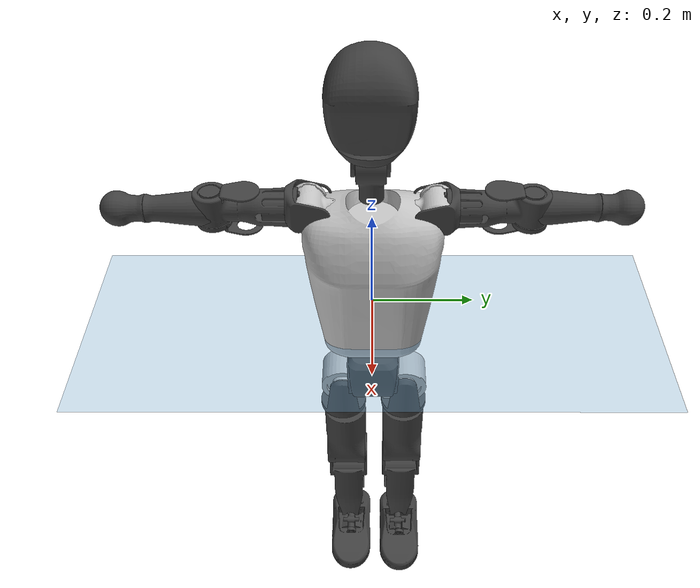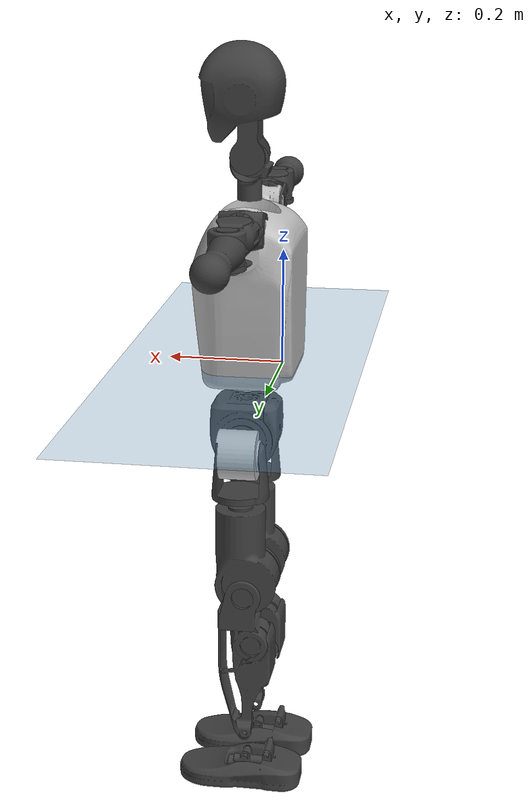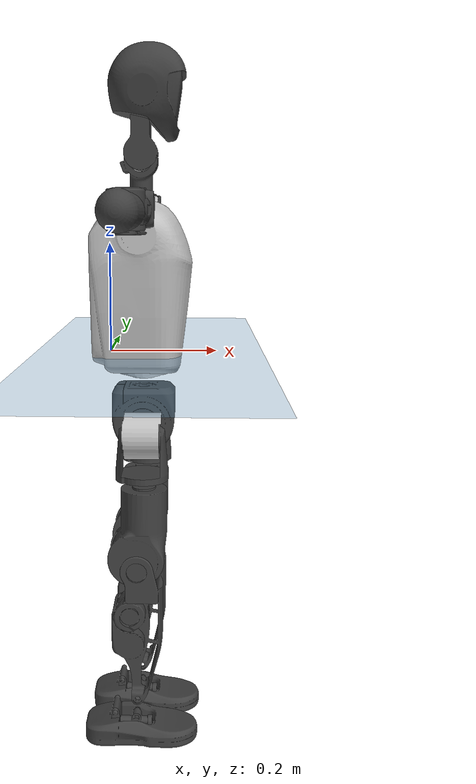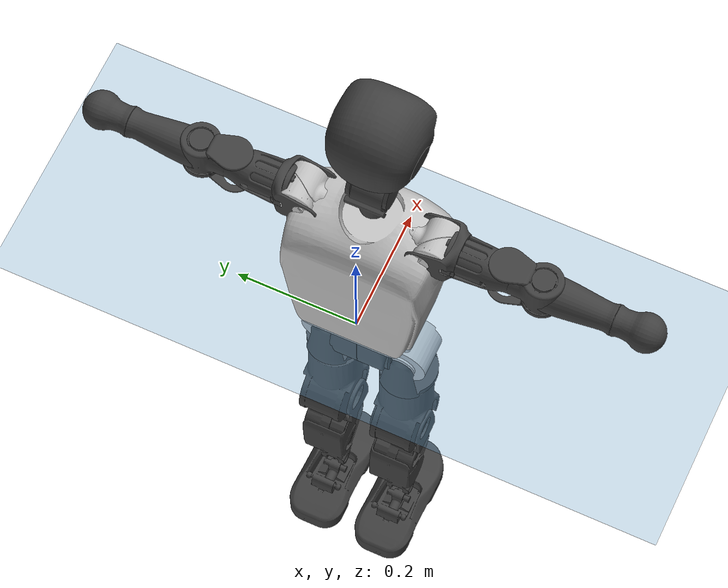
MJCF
<mujoco model="T1">
  <compiler angle="radian" assetdir="assets" balanceinertia="true" inertiafromgeom="false"/>

  <option timestep="0.005" density="1.2" viscosity="2e-05"/>

  <size nkey="1"/>

  <visual>
    <quality shadowsize="8192"/>
    <map shadowclip="0.5"/>
  </visual>

  <default>
    <default class="/">
      <joint armature="0.01" damping="0.01" frictionloss="0.1"/>
      <geom contype="0" conaffinity="0" group="1" solref="-1000 -80"/>
      <site size="0.01 0.005 0.005" group="5"/>
      <general forcelimited="true" biastype="affine" gainprm="25" biasprm="0 -25 -0.6"/>
      <default class="t1">
        <geom rgba="0.25 0.25 0.25 1"/>
        <default class="visual">
          <geom type="mesh" group="2"/>
        </default>
        <default class="collision">
          <geom group="3"/>
        </default>
        <default class="foot">
          <geom size="0.1115 0.05 0.015" type="box" condim="6" group="4" priority="1" solimp="0.015 1 0.015"/>
        </default>
        <default class="reward_collision_sphere">
          <geom group="5" rgba="1 0 0 1"/>
        </default>
      </default>
    </default>
  </default>

  <asset>
    <texture type="skybox" colorspace="auto" name="//unnamed_texture_0" builtin="gradient" rgb1="0.95 0.95 0.95" rgb2="0.95 0.95 0.95" width="100" height="600"/>
    <texture type="2d" colorspace="auto" name="texplane" builtin="checker" rgb1="0.345 0.575 0.748" rgb2="0.345 0.575 0.748" markrgb="1 1 1" width="512" height="512"/>
    <material name="MatPlane" class="/" texture="texplane" texuniform="true" texrepeat="2 2" specular="0.9"/>
    <mesh name="Trunk" class="/" file="Trunk.stl"/>
    <mesh name="H1" class="/" file="H1.stl"/>
    <mesh name="H2" class="/" file="H2.stl"/>
    <mesh name="AL1" class="/" file="AL1.stl"/>
    <mesh name="AL2" class="/" file="AL2.stl"/>
    <mesh name="AL3" class="/" file="AL3.stl"/>
    <mesh name="left_hand_link" class="/" file="left_hand_link.stl"/>
    <mesh name="AR1" class="/" file="AR1.stl"/>
    <mesh name="AR2" class="/" file="AR2.stl"/>
    <mesh name="AR3" class="/" file="AR3.stl"/>
    <mesh name="right_hand_link" class="/" file="right_hand_link.stl"/>
    <mesh name="Waist" class="/" file="Waist.stl"/>
    <mesh name="Hip_Pitch_Left" class="/" file="Hip_Pitch_Left.stl"/>
    <mesh name="Hip_Roll_Left" class="/" file="Hip_Roll_Left.stl"/>
    <mesh name="Hip_Yaw_Left" class="/" file="Hip_Yaw_Left.stl"/>
    <mesh name="Shank_Left" class="/" file="Shank_Left.stl"/>
    <mesh name="Ankle_Cross_Left" class="/" file="Ankle_Cross_Left.stl"/>
    <mesh name="left_foot_link" class="/" file="left_foot_link.stl"/>
    <mesh name="Hip_Pitch_Right" class="/" file="Hip_Pitch_Right.stl"/>
    <mesh name="Hip_Roll_Right" class="/" file="Hip_Roll_Right.stl"/>
    <mesh name="Hip_Yaw_Right" class="/" file="Hip_Yaw_Right.stl"/>
    <mesh name="Shank_Right" class="/" file="Shank_Right.stl"/>
    <mesh name="Ankle_Cross_Right" class="/" file="Ankle_Cross_Right.stl"/>
    <mesh name="right_foot_link" class="/" file="right_foot_link.stl"/>
  </asset>

  <worldbody>
    <geom name="floor" class="/" size="100 100 0.125" type="plane" group="0" material="MatPlane"/>
    <light name="toplight_shadow" class="/" pos="0 0 5" dir="0.0990148 0.0990148 -0.990148" type="directional" ambient="0.04 0.04 0.04" diffuse="0.55 0.55 0.55" specular="0.12 0.12 0.12"/>
    <light name="toplight_fill" class="/" pos="0 0 5" dir="0.0990148 0.0990148 -0.990148" type="directional" castshadow="false" ambient="0.04 0.04 0.04" diffuse="0.3 0.3 0.3" specular="0.08 0.08 0.08"/>
    <body name="trunk" childclass="t1" pos="-7.35631e-05 0.00176641 0.00108589" quat="1 1.39535e-05 2.89028e-05 1.88651e-05">
      <inertial pos="0.0509538 -0.00238622 0.123912" quat="0.999959 0.00180902 -0.00277726 0.0084155" mass="8.76546" diaginertia="0.071603 0.00603646 0.119742"/>
      <joint name="//unnamed_joint_0" type="free" armature="0" damping="0" frictionloss="0"/>
      <geom name="//unnamed_geom_1" class="visual" rgba="0.76 0.76 0.76 1" mesh="Trunk"/>
      <geom name="//unnamed_geom_2" class="collision" size="0.0685289 0.0913718 0.137058" pos="0.0572271 0 0.141344" type="box"/>
      <geom name="//unnamed_geom_3" class="reward_collision_sphere" size="0.105078" pos="0.0572271 0 0.117786"/>
      <geom name="//unnamed_geom_4" class="reward_collision_sphere" size="0.0137058" pos="0.0572271 0.0518079 0"/>
      <geom name="//unnamed_geom_5" class="reward_collision_sphere" size="0.0137058" pos="0.0572271 -0.0518079 0"/>
      <geom name="//unnamed_geom_6" class="reward_collision_sphere" size="0.0137058" pos="0.0572271 0.065217 0.212016"/>
      <geom name="//unnamed_geom_7" class="reward_collision_sphere" size="0.0137058" pos="0.0572271 -0.065217 0.212016"/>
      <site name="imu" pos="0.000830775 -6.62141e-05 -0.0136464" size="0.00913718"/>
      <camera name="track" pos="0 -1.21901 0" quat="0.707107 0.707107 0 0" mode="trackcom"/>
      <camera name="ego_camera" pos="0.116362 0 0.494703" quat="-0.5 -0.5 0.5 0.5"/>
      <body name="H1" pos="0.0592491 -0.00271606 0.283641" quat="1 -7.70299e-05 8.88612e-06 -3.69685e-05">
        <inertial pos="0.000503809 -0.00293829 0.0702875" quat="0.764928 -0.0231671 -0.00685083 0.643662" mass="0.329933" diaginertia="0.000179196 1.88202e-05 0.000318924"/>
        <joint name="AAHead_yaw" pos="0 0 0" axis="0.0126804 0.00587858 0.999902" stiffness="0.00202971" range="-1.51518 1.54197" armature="0.00934965" damping="0" frictionloss="0.0823192"/>
        <geom name="//unnamed_geom_8" class="visual" mesh="H1"/>
        <body name="H2" pos="-0.000578853 -0.000667488 0.0754964" quat="0.999999 -0.000152209 -0.000640243 -0.000936295">
          <inertial pos="0.00420856 0.0021517 0.117245" quat="0.98735 0.108286 -0.0754206 -0.0878992" mass="0.482264" diaginertia="0.00160068 0.000156931 0.00402066"/>
          <joint name="Head_pitch" pos="0 0 0" axis="0.00518265 -0.999983 0.00262573" range="-1.17944 0.328868" armature="0.00865546" damping="0.0145338" frictionloss="0.0872475"/>
          <geom name="//unnamed_geom_9" class="visual" mesh="H2"/>
          <geom name="//unnamed_geom_10" class="collision" size="0.0730974" pos="0.00953785 0 0.129565"/>
          <geom name="//unnamed_geom_11" class="reward_collision_sphere" size="0.0822346" pos="0.0190757 0 0.117786"/>
        </body>
      </body>
      <body name="AL1" pos="0.0538585 0.0628053 0.256391" quat="1 -2.94441e-05 0.000656504 -0.000205785">
        <inertial pos="0.00177272 0.025058 3.27069e-05" quat="0.502966 0.497075 -0.505142 0.494746" mass="0.397515" diaginertia="0.00102704 0.000106497 0.000657275"/>
        <joint name="Left_Shoulder_Pitch" pos="0 0 0" axis="0.0106492 0.999923 0.00633821" range="-3.32752 1.21378" armature="0.00831534" damping="0" frictionloss="0.0791792"/>
        <geom name="//unnamed_geom_12" class="visual" rgba="0.76 0.76 0.76 1" mesh="AL1"/>
        <body name="AL2" pos="-0.00104164 0.0268906 0.00108213" quat="1 -2.15599e-06 3.6837e-05 -0.000242871">
          <inertial pos="0.00186302 0.0255205 -0.000331655" quat="0.4841 0.521973 -0.485085 0.507822" mass="0.123706" diaginertia="0.000321373 2.90986e-05 0.000409816"/>
          <joint name="Left_Shoulder_Roll" pos="0 0 0" axis="-0.999997 -0.00237665 -0.000571564" range="-1.57866 1.70014" armature="0.00994564" damping="0.0125775" frictionloss="0.0875486"/>
          <geom name="//unnamed_geom_13" class="visual" mesh="AL2"/>
          <body name="AL3" pos="-0.00159594 0.0341432 -0.00168021" quat="1 -3.85499e-05 -3.55048e-05 2.18881e-05">
            <inertial pos="-0.00101604 0.0537304 0.00227074" quat="0.708185 0.705955 -0.00952243 -0.00337853" mass="0.756256" diaginertia="0.00959073 0.00101821 0.00136697"/>
            <joint name="Left_Elbow_Pitch" pos="0 0 0" axis="-0.0132546 -0.99991 -0.00202847" stiffness="0.0110194" range="-2.26435 2.23742" armature="0.00932694" damping="0.0103314" frictionloss="0.0839963"/>
            <geom name="//unnamed_geom_14" class="visual" mesh="AL3"/>
            <geom name="//unnamed_geom_15" class="collision" size="0.0274115 0.0685289" pos="0 0.0304753 0" quat="0.707105 0.707108 0 0" type="cylinder"/>
            <geom name="//unnamed_geom_16" class="reward_collision_sphere" size="0.0328939"/>
            <body name="left_hand_link" pos="-0.00190528 0.0923492 0.000672521" quat="1 0.000223804 -0.000517599 0.000420905">
              <inertial pos="-0.00176608 0.0681365 -5.07603e-05" quat="0.712493 0.701623 -0.00562162 0.00686479" mass="0.241331" diaginertia="0.00633949 0.0006907 0.000485679"/>
              <joint name="Left_Elbow_Yaw" pos="0 0 0" axis="-0.00157982 0.000926851 0.999998" stiffness="0.0127794" range="-2.4919 -0.0303614" armature="0.00886881" damping="0.00874059" frictionloss="0.102661"/>
              <geom name="//unnamed_geom_17" class="visual" mesh="left_hand_link"/>
              <geom name="//unnamed_geom_18" class="collision" size="0.0274115 0.0799503" pos="0 0.0792357 0" quat="0.707105 0.707108 0 0" type="cylinder"/>
              <geom name="//unnamed_geom_19" class="reward_collision_sphere" size="0.0456859"/>
              <geom name="//unnamed_geom_20" class="reward_collision_sphere" size="0.0319801" pos="0 0.0670456 0"/>
              <geom name="//unnamed_geom_21" class="reward_collision_sphere" size="0.0319801" pos="0 0.131044 0"/>
            </body>
          </body>
        </body>
      </body>
      <body name="AR1" pos="0.0522133 -0.0637988 0.258254" quat="1 -5.37942e-05 0.000507383 4.87741e-05">
        <inertial pos="-0.00114064 -0.0276319 -0.00108068" quat="0.508035 0.503395 -0.495442 0.492981" mass="0.417077" diaginertia="0.00109295 0.000105571 0.00067172"/>
        <joint name="Right_Shoulder_Pitch" pos="0 0 0" axis="0.00346462 -0.999958 -0.00852439" range="-1.22614 3.2941" armature="0.00833489" damping="0.0192559" frictionloss="0.0964843"/>
        <geom name="//unnamed_geom_22" class="visual" rgba="0.76 0.76 0.76 1" mesh="AR1"/>
        <body name="AR2" pos="-0.00204919 -0.0283387 0.00201788" quat="1 3.85257e-05 7.27759e-05 0.000106658">
          <inertial pos="0.00486465 -0.0233754 0.00155513" quat="0.517643 0.492917 -0.51138 0.477042" mass="0.119568" diaginertia="0.000315638 2.78779e-05 0.000398104"/>
          <joint name="Right_Shoulder_Roll" pos="0 0 0" axis="-0.999998 0.000882438 0.00194368" range="-1.7584 1.59626" armature="0.0084429" damping="0.00111444" frictionloss="0.0942152"/>
          <geom name="//unnamed_geom_23" class="visual" mesh="AR2"/>
          <body name="AR3" pos="-0.000178652 -0.0351273 -0.00282325" quat="0.999999 -5.01011e-06 -0.00119011 -1.56809e-05">
            <inertial pos="0.000151972 -0.0511258 -0.000712268" quat="0.709015 0.705068 0.0119865 -0.00574966" mass="0.760905" diaginertia="0.00979969 0.00103839 0.00136777"/>
            <joint name="Right_Elbow_Pitch" pos="0 0 0" axis="0.000214906 1 0.000520272" stiffness="0.0153599" range="-2.28959 2.26426" armature="0.009122" damping="0" frictionloss="0.0920013"/>
            <geom name="//unnamed_geom_24" class="visual" mesh="AR3"/>
            <geom name="//unnamed_geom_25" class="collision" size="0.0274115 0.0685289" pos="0 -0.0304753 0" quat="0.707105 0.707108 0 0" type="cylinder"/>
            <geom name="//unnamed_geom_26" class="reward_collision_sphere" size="0.0328939"/>
            <body name="right_hand_link" pos="0.000761215 -0.0913395 -0.00200077" quat="1 3.43986e-05 6.61749e-05 -0.000223708">
              <inertial pos="-0.00174982 -0.0676689 0.00219252" quat="0.704171 0.709973 0.00227974 0.0087754" mass="0.248641" diaginertia="0.00636187 0.000656617 0.000469966"/>
              <joint name="Right_Elbow_Yaw" pos="0 0 0" axis="0.00607949 0.00527947 0.999968" range="0.0542189 2.44045" armature="0.00852871" damping="0.00213994" frictionloss="0.0900333"/>
              <geom name="//unnamed_geom_27" class="visual" mesh="right_hand_link"/>
              <geom name="//unnamed_geom_28" class="collision" size="0.0274115 0.0799503" pos="0 -0.0792357 0" quat="0.707105 0.707108 0 0" type="cylinder"/>
              <geom name="//unnamed_geom_29" class="reward_collision_sphere" size="0.0456859"/>
              <geom name="//unnamed_geom_30" class="reward_collision_sphere" size="0.0319801" pos="0 -0.0670456 0"/>
              <geom name="//unnamed_geom_31" class="reward_collision_sphere" size="0.0319801" pos="0 -0.131044 0"/>
            </body>
          </body>
        </body>
      </body>
      <body name="Waist" pos="0.0625165 0.000202059 -0.133694" quat="1 0.000113017 0.0002493 -0.000674875">
        <inertial pos="0.00314753 -0.00140147 0.0102295" quat="0.983649 0.000358101 -0.180078 0.00268376" mass="2.05472" diaginertia="0.00431365 0.000459706 0.0106883"/>
        <joint name="Waist" pos="0 0 0" axis="-0.00889771 0.00549039 0.999945" range="-1.54936 1.58328" armature="0.0104079" damping="0" frictionloss="0.095773"/>
        <geom name="//unnamed_geom_32" class="visual" mesh="Waist"/>
        <body name="Hip_Pitch_Left" pos="0.00398693 0.0654532 0.000409039" quat="1 2.57561e-05 -0.000332624 -0.000273551">
          <inertial pos="0.000337426 -0.00755085 -0.0218055" quat="0.975064 0.220663 0.0220619 -0.00840765" mass="0.778792" diaginertia="0.001344 0.00011642 0.0026594"/>
          <joint name="Left_Hip_Pitch" pos="0 0 0" axis="-0.0136046 0.999861 0.00962709" stiffness="0.00812719" range="-1.82867 1.62321" armature="0.00795629" damping="0.0115896" frictionloss="0.10392"/>
          <geom name="//unnamed_geom_33" class="visual" rgba="0.76 0.76 0.76 1" mesh="Hip_Pitch_Left"/>
          <body name="Hip_Roll_Left" pos="-0.000390633 -0.000235535 -0.0217561" quat="0.999999 0.000112603 0.00111967 -5.82428e-05">
            <inertial pos="0.00159997 -0.000840966 -0.0608871" quat="0.703566 0.00146763 -0.0032319 0.710621" mass="0.299109" diaginertia="0.00140077 0.000132701 0.00115368"/>
            <joint name="Left_Hip_Roll" pos="0 0 0" axis="-0.999937 -0.00548575 0.00984198" range="-1.59351 0.189572" armature="0.00898961" damping="0.0194495" frictionloss="0.0908933"/>
            <geom name="//unnamed_geom_34" class="visual" mesh="Hip_Roll_Left"/>
            <geom name="//unnamed_geom_35" class="reward_collision_sphere" size="0.0502545"/>
            <body name="Hip_Yaw_Left" pos="-0.00270425 0.000377771 -0.0966336" quat="1 3.60304e-05 -7.47954e-05 -0.000380804">
              <inertial pos="-0.00478607 -0.00231169 -0.107618" quat="0.70168 -0.035005 -0.0285199 0.71106" mass="1.61228" diaginertia="0.0193378 0.0020723 0.00578403"/>
              <joint name="Left_Hip_Yaw" pos="0 0 0" axis="0.00896066 0.00767393 -0.99993" range="-0.963609 1.02696" armature="0.00959347" damping="0" frictionloss="0.103195"/>
              <geom name="//unnamed_geom_36" class="visual" mesh="Hip_Yaw_Left"/>
              <geom name="//unnamed_geom_37" class="collision" size="0.0456859 0.0730974" type="cylinder"/>
              <body name="Shank_Left" pos="-0.00955685 -0.00074834 -0.156874" quat="1 5.43607e-05 5.18369e-05 4.95243e-05">
                <inertial pos="-0.00522761 4.92182e-05 -0.146312" quat="0.997357 -0.00779915 -0.0256914 0.0675073" mass="1.31169" diaginertia="0.0272124 0.00291933 0.00443285"/>
                <joint name="Left_Knee_Pitch" pos="0 0 0" axis="-0.000270277 1 0.000220886" stiffness="0.0081311" range="0.0451646 2.39449" armature="0.00855958" damping="0.0172483" frictionloss="0.0944072"/>
                <geom name="//unnamed_geom_38" class="visual" mesh="Shank_Left"/>
                <geom name="//unnamed_geom_39" class="collision" size="0.0456859 0.0685289" pos="0 0 -0.141344" type="cylinder"/>
                <geom name="//unnamed_geom_40" class="reward_collision_sphere" size="0.0593917"/>
                <body name="Ankle_Cross_Left" pos="-0.000384231 0.00029811 -0.331224" quat="0.999999 0.00101726 -0.000223586 0.000750193">
                  <inertial pos="-0.00211868 0.00250018 -0.011866" quat="0.444388 0.554145 0.547951 0.441805" mass="0.0535611" diaginertia="2.28417e-05 2.01484e-06 2.48027e-05"/>
                  <joint name="Left_Ankle_Pitch" pos="0 0 0" axis="0.000527479 0.999887 0.0149958" stiffness="0.00667018" range="-0.923663 0.403016" armature="0.00903235" damping="0.0206179" frictionloss="0.0847773"/>
                  <geom name="//unnamed_geom_41" class="visual" mesh="Ankle_Cross_Left"/>
                  <body name="left_foot_link" pos="-0.000274038 0.00319319 -0.0164547" quat="1 -0.000706345 0.000387351 0.000295265">
                    <inertial pos="0.00240978 0.000769508 -0.0098237" quat="-0.00610334 0.620684 0.0074872 0.784001" mass="0.543544" diaginertia="0.00213134 0.000213073 0.00528212"/>
                    <joint name="Left_Ankle_Roll" pos="0 0 0" axis="-0.999937 0.01118 -0.00127124" stiffness="0.00978915" range="-0.496114 0.420866" armature="0.00836515" damping="0.0101668" frictionloss="0.103713"/>
                    <geom name="//unnamed_geom_42" class="visual" mesh="left_foot_link"/>
                    <geom name="left_foot" class="foot" size="0.0971735 0.051809 0.0126781" pos="0.00953785 0 -0.017668"/>
                    <geom name="//unnamed_geom_44" class="reward_collision_sphere" size="0.0475133" pos="0.00953785 0 -0.017668"/>
                    <geom name="//unnamed_geom_45" class="reward_collision_sphere" size="0.0274115" pos="0.0906095 -0.0140186 -0.017668"/>
                    <geom name="//unnamed_geom_46" class="reward_collision_sphere" size="0.0274115" pos="-0.0667649 -0.0140186 -0.017668"/>
                    <site name="left_foot" class="foot" pos="0.00953785 0 -0.017668" size="0.00913718"/>
                  </body>
                </body>
              </body>
            </body>
          </body>
        </body>
        <body name="Hip_Pitch_Right" pos="0.000378035 -0.0614078 -0.000559982" quat="1 -0.000290929 0.000101994 0.000673028">
          <inertial pos="0.0005999 0.00600306 -0.0214682" quat="0.975033 -0.220917 0.0224957 -3.5967e-05" mass="0.727763" diaginertia="0.00139313 0.000119023 0.00273717"/>
          <joint name="Right_Hip_Pitch" pos="0 0 0" axis="0.0154364 -0.999874 -0.00366031" range="-1.52792 1.75253" armature="0.00790376" damping="0.0164222" frictionloss="0.0796762"/>
          <geom name="//unnamed_geom_47" class="visual" rgba="0.76 0.76 0.76 1" mesh="Hip_Pitch_Right"/>
          <body name="Hip_Roll_Right" pos="0.000816077 -0.00173534 -0.0262874" quat="1 -0.000514148 0.000311142 0.000340515">
            <inertial pos="0.000739464 0.000893919 -0.0644851" quat="0.707866 -0.00666938 -0.00504466 0.706297" mass="0.30903" diaginertia="0.00143607 0.000130319 0.00120138"/>
            <joint name="Right_Hip_Roll" pos="0 0 0" axis="-0.999869 -0.0111045 -0.0117993" range="-0.205443 1.56442" armature="0.00945024" damping="0.0198451" frictionloss="0.0868492"/>
            <geom name="//unnamed_geom_48" class="visual" mesh="Hip_Roll_Right"/>
            <geom name="//unnamed_geom_49" class="reward_collision_sphere" size="0.0502545"/>
            <body name="Hip_Yaw_Right" pos="0.0009533 0.00298974 -0.0962982" quat="1 0.000325995 0.000174643 -0.000404288">
              <inertial pos="-0.00644851 0.00199549 -0.102485" quat="0.713312 -0.037974 -0.0217624 0.699479" mass="1.75409" diaginertia="0.0210667 0.00220257 0.00587316"/>
              <joint name="Right_Hip_Yaw" pos="0 0 0" axis="0.0110952 -0.00593125 -0.999921" range="-1.05154 1.01377" armature="0.00827571" damping="0.0222344" frictionloss="0.090523"/>
              <geom name="//unnamed_geom_50" class="visual" mesh="Hip_Yaw_Right"/>
              <geom name="//unnamed_geom_51" class="collision" size="0.0456859 0.0730974" type="cylinder"/>
              <body name="Shank_Right" pos="-0.0126956 0.00290387 -0.157456" quat="1 0.00014593 0.000147759 -8.00999e-06">
                <inertial pos="-0.00472925 -0.000622511 -0.147273" quat="0.999089 -0.00370834 -0.032275 -0.0276765" mass="1.36953" diaginertia="0.0284379 0.0028148 0.00442475"/>
                <joint name="Right_Knee_Pitch" pos="0 0 0" axis="-0.0116009 -0.999927 0.00327874" stiffness="0.00321971" range="-2.29011 0.049801" armature="0.00900343" damping="0.0188315" frictionloss="0.0874108"/>
                <geom name="//unnamed_geom_52" class="visual" mesh="Shank_Right"/>
                <geom name="//unnamed_geom_53" class="collision" size="0.0456859 0.0685289" pos="0 0 -0.141344" type="cylinder"/>
                <geom name="//unnamed_geom_54" class="reward_collision_sphere" size="0.0593917"/>
                <body name="Ankle_Cross_Right" pos="-0.00282994 0.000651644 -0.328017" quat="1 0.000274322 -3.77107e-07 -0.000176106">
                  <inertial pos="-0.00588471 -0.00103393 -0.00849302" quat="0.447419 0.551243 0.550635 0.439032" mass="0.0564279" diaginertia="2.35303e-05 2.18645e-06 2.61774e-05"/>
                  <joint name="Right_Ankle_Pitch" pos="0 0 0" axis="0.000365647 -0.999999 0.00136348" range="-0.319015 0.922668" armature="0.00916888" damping="0.00054372" frictionloss="0.0879358"/>
                  <geom name="//unnamed_geom_55" class="visual" mesh="Ankle_Cross_Right"/>
                  <body name="right_foot_link" pos="-0.000122261 -0.000458958 -0.0122293" quat="0.999999 0.00022724 -0.00126366 -0.000368821">
                    <inertial pos="0.00214302 -0.00153206 -0.0105612" quat="-0.00594691 0.617795 0.00232454 0.786314" mass="0.524121" diaginertia="0.00206384 0.000195028 0.00472114"/>
                    <joint name="Right_Ankle_Roll" pos="0 0 0" axis="-1 -0.000419755 -7.62278e-05" stiffness="0.00509522" range="-0.477909 0.439046" armature="0.0103273" damping="0" frictionloss="0.0875234"/>
                    <geom name="//unnamed_geom_56" class="visual" mesh="right_foot_link"/>
                    <geom name="right_foot" class="foot" size="0.100627 0.046598 0.0143492" pos="0.00953785 0 -0.017668"/>
                    <geom name="//unnamed_geom_58" class="reward_collision_sphere" size="0.0365487"/>
                    <geom name="//unnamed_geom_59" class="reward_collision_sphere" size="0.0274115" pos="0.00953785 0 -0.017668"/>
                    <geom name="//unnamed_geom_60" class="reward_collision_sphere" size="0.0274115" pos="0.0906095 0.0140186 -0.017668"/>
                    <geom name="//unnamed_geom_61" class="reward_collision_sphere" size="0.0274115" pos="-0.0667649 0.0140186 -0.017668"/>
                    <site name="right_foot" class="foot" pos="0.00953785 0 -0.017668" size="0.00913718"/>
                  </body>
                </body>
              </body>
            </body>
          </body>
        </body>
      </body>
    </body>
  </worldbody>

  <contact>
    <pair class="/" geom1="floor" geom2="left_foot" name="//unnamed_contact_0"/>
    <pair class="/" geom1="floor" geom2="right_foot" name="//unnamed_contact_1"/>
  </contact>

  <actuator>
    <general name="AAHead_yaw" class="/" joint="AAHead_yaw" forcerange="-6.78899 6.78899" gainprm="23.6044" biasprm="0 -23.6044 -0.509744"/>
    <general name="Head_pitch" class="/" joint="Head_pitch" forcerange="-6.71809 6.71809" gainprm="23.6044" biasprm="0 -23.6044 -0.509744"/>
    <general name="Left_Shoulder_Pitch" class="/" joint="Left_Shoulder_Pitch" forcerange="-14.6552 14.6552" gainprm="23.6044" biasprm="0 -23.6044 -0.509744"/>
    <general name="Left_Shoulder_Roll" class="/" joint="Left_Shoulder_Roll" forcerange="-16.7922 16.7922" gainprm="23.6044" biasprm="0 -23.6044 -0.509744"/>
    <general name="Left_Elbow_Pitch" class="/" joint="Left_Elbow_Pitch" forcerange="-16.0854 16.0854" gainprm="23.6044" biasprm="0 -23.6044 -0.509744"/>
    <general name="Left_Elbow_Yaw" class="/" joint="Left_Elbow_Yaw" forcerange="-15.361 15.361" gainprm="23.6044" biasprm="0 -23.6044 -0.509744"/>
    <general name="Right_Shoulder_Pitch" class="/" joint="Right_Shoulder_Pitch" forcerange="-17.3522 17.3522" gainprm="23.6044" biasprm="0 -23.6044 -0.509744"/>
    <general name="Right_Shoulder_Roll" class="/" joint="Right_Shoulder_Roll" forcerange="-17.1052 17.1052" gainprm="23.6044" biasprm="0 -23.6044 -0.509744"/>
    <general name="Right_Elbow_Pitch" class="/" joint="Right_Elbow_Pitch" forcerange="-15.9219 15.9219" gainprm="23.6044" biasprm="0 -23.6044 -0.509744"/>
    <general name="Right_Elbow_Yaw" class="/" joint="Right_Elbow_Yaw" forcerange="-18.129 18.129" gainprm="23.6044" biasprm="0 -23.6044 -0.509744"/>
    <general name="Waist" class="/" joint="Waist" forcerange="-25.6847 25.6847" gainprm="23.6044" biasprm="0 -23.6044 -0.509744"/>
    <general name="Left_Hip_Pitch" class="/" joint="Left_Hip_Pitch" forcerange="-36.9672 36.9672" gainprm="23.6044" biasprm="0 -23.6044 -0.509744"/>
    <general name="Left_Hip_Roll" class="/" joint="Left_Hip_Roll" forcerange="-27.1542 27.1542" gainprm="23.6044" biasprm="0 -23.6044 -0.509744"/>
    <general name="Left_Hip_Yaw" class="/" joint="Left_Hip_Yaw" forcerange="-29.4316 29.4316" gainprm="23.6044" biasprm="0 -23.6044 -0.509744"/>
    <general name="Left_Knee_Pitch" class="/" joint="Left_Knee_Pitch" forcerange="-56.7544 56.7544" gainprm="23.6044" biasprm="0 -23.6044 -0.509744"/>
    <general name="Left_Ankle_Pitch" class="/" joint="Left_Ankle_Pitch" forcerange="-20.201 20.201" gainprm="23.6044" biasprm="0 -23.6044 -0.509744"/>
    <general name="Left_Ankle_Roll" class="/" joint="Left_Ankle_Roll" forcerange="-13.8253 13.8253" gainprm="23.6044" biasprm="0 -23.6044 -0.509744"/>
    <general name="Right_Hip_Pitch" class="/" joint="Right_Hip_Pitch" forcerange="-42.3564 42.3564" gainprm="23.6044" biasprm="0 -23.6044 -0.509744"/>
    <general name="Right_Hip_Roll" class="/" joint="Right_Hip_Roll" forcerange="-25.0328 25.0328" gainprm="23.6044" biasprm="0 -23.6044 -0.509744"/>
    <general name="Right_Hip_Yaw" class="/" joint="Right_Hip_Yaw" forcerange="-25.0621 25.0621" gainprm="23.6044" biasprm="0 -23.6044 -0.509744"/>
    <general name="Right_Knee_Pitch" class="/" joint="Right_Knee_Pitch" forcerange="-55.3641 55.3641" gainprm="23.6044" biasprm="0 -23.6044 -0.509744"/>
    <general name="Right_Ankle_Pitch" class="/" joint="Right_Ankle_Pitch" forcerange="-19.7532 19.7532" gainprm="23.6044" biasprm="0 -23.6044 -0.509744"/>
    <general name="Right_Ankle_Roll" class="/" joint="Right_Ankle_Roll" forcerange="-14.1776 14.1776" gainprm="23.6044" biasprm="0 -23.6044 -0.509744"/>
  </actuator>

  <sensor>
    <gyro site="imu" name="imu_angular_velocity"/>
    <velocimeter site="imu" name="imu_linear_velocity"/>
    <framelinvel objtype="site" objname="left_foot" name="left_foot_global_linear_velocity"/>
    <framelinvel objtype="site" objname="right_foot" name="right_foot_global_linear_velocity"/>
  </sensor>

  <keyframe>
    <key name="home" qpos="0 0 0.6385 1 0 0 0 0 0 0 1.4 0 -0.4 0 -1.4 0 0.4 0 -0.4 0 0 0.8 -0.4 0 0.4 0 0 -0.8 0.4 0"/>
  </keyframe>
</mujoco>
